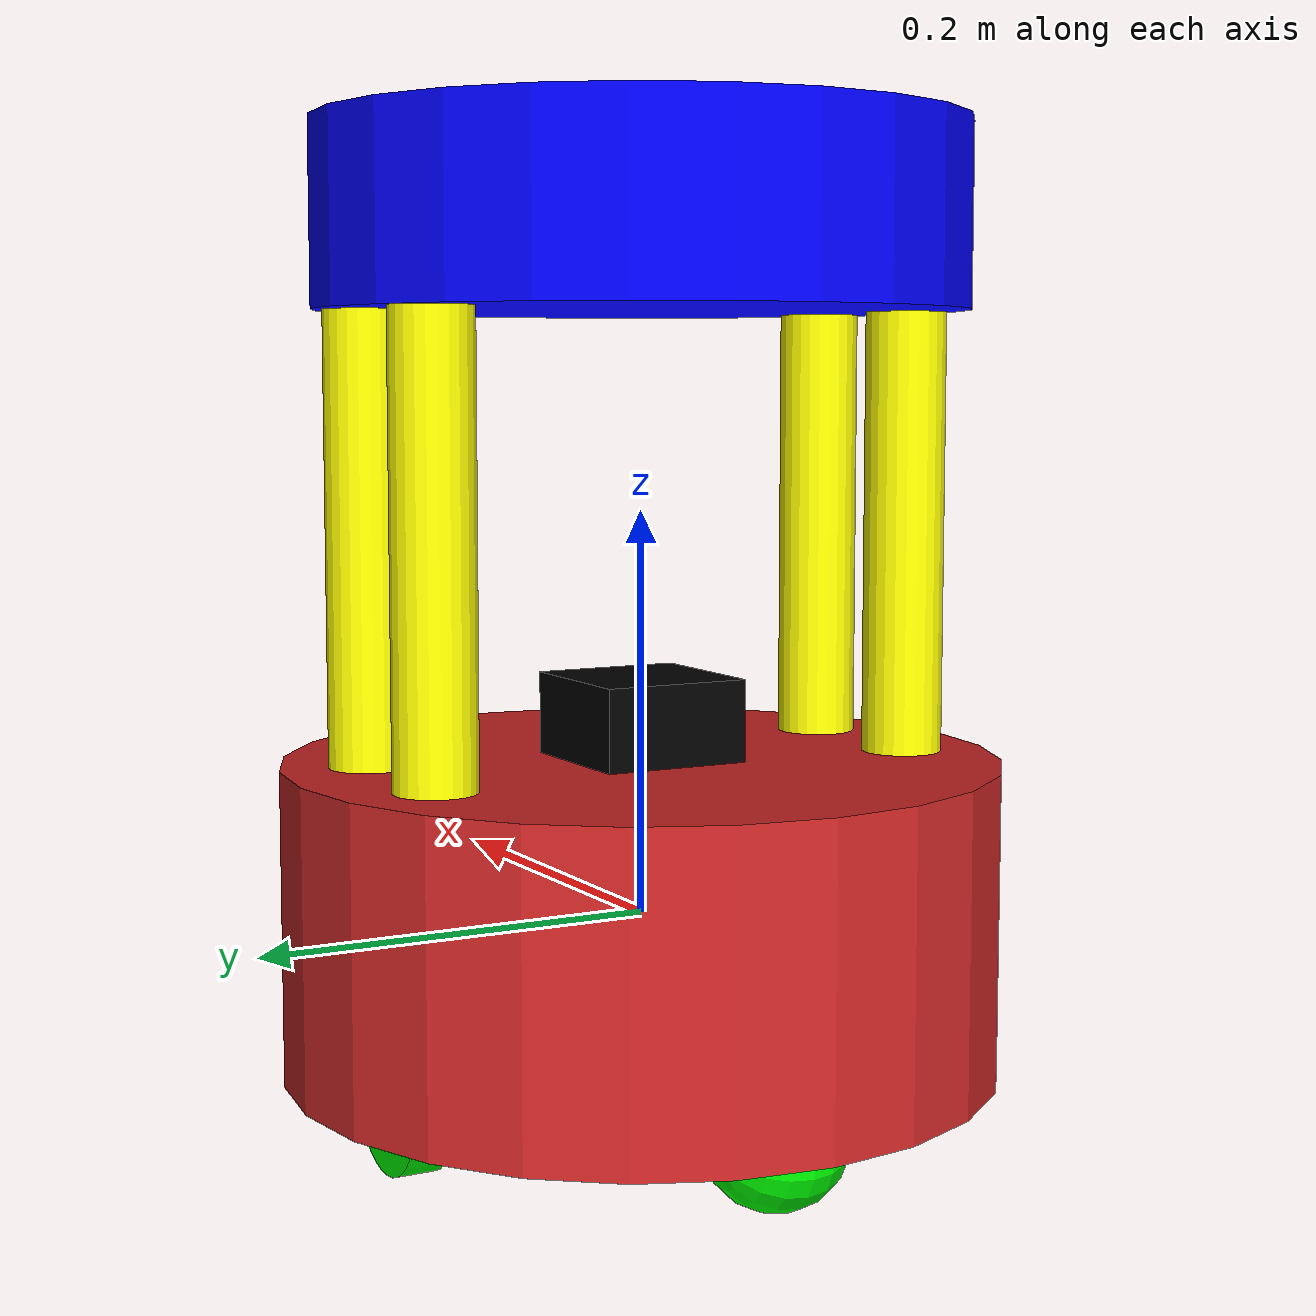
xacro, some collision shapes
<?xml version="1.0"?>
<robot xmlns:xacro="http://www.ros.org/wiki/xacro" name="barista_robot">

<!-- Robot Name -->
<xacro:property name="robot_name" value="$(arg robot_name)"/>

<!-- Main Body Dimensions-->
<xacro:property name="body_length" value="0.155"/>
<xacro:property name="body_radius" value="0.178"/>

<!-- Caster Wheels Dimensions-->
<xacro:property name="caster_length" value="0.001"/>
<xacro:property name="caster_radius" value="0.0045000000000000005"/>
<xacro:property name="caster_sphere" value="0.0352"/>

<!-- Include Laser -->
<xacro:property name="include_laser" value="true"/>

<!-- Include Wheel Macro-->
<xacro:include filename="$(find barista_robot_description)/xacro/wheel.xacro" />

<!-- Include StandOff Macro-->
<xacro:include filename="$(find barista_robot_description)/xacro/standoff.xacro" />

<!-- Include Cup Holder Macro-->
<xacro:include filename="$(find barista_robot_description)/xacro/cup_holder_tray.xacro" />

<!-- Include Rviz Colors Macro-->

<link name="base_link">
  </link>

  <!-- Body -->
  <link name="chassis">
    <visual>
      <geometry>
        <cylinder length="${body_length}" radius="${body_radius}"/>
      </geometry>
      <material name="red"/>
    </visual>

    <collision>
      <geometry>
        <cylinder length="${body_length}" radius="${body_radius}"/>
      </geometry>
    </collision>

    <inertial>
      <mass value="2.92"/>
      <origin rpy="0 0 0" xyz="0 0 0"/>
      <inertia ixx="0.09052" ixy="0" ixz="0" iyy="0.09052" iyz="0" izz="0.03790"/>
    </inertial>

  </link>

  <gazebo reference="chassis">
        <material>Gazebo/Red</material>
  </gazebo>

   <joint name="base_link_joint" type="fixed">
    <origin rpy="0 0 0" xyz="0 0 0" />
    <parent link="base_link" />
    <child link="chassis" />
  </joint>

  <!-- Wheel Left -->
  <xacro:wheel wheel_name="left_wheel" />

  <gazebo reference="left_wheel">
    <kp>1000000000000000000000000000.0</kp>
    <kd>1000000000000000000000000000.0</kd>
    <mu1>10.0</mu1>
    <mu2>10.0</mu2>
    <material>Gazebo/Green</material>
  </gazebo>

  <joint name="joint_left_wheel" type="continuous">
    <origin rpy="0 0 0" xyz="0 0.128 -0.0775"/>
    <child link="left_wheel"/>
    <parent link="chassis"/>
    <axis rpy="0 0 0" xyz="0 1 0"/>
    <limit effort="10000" velocity="1000"/>
    <joint_properties damping="1.0" friction="1.0"/>
  </joint>

  <!-- Wheel Right -->
  <xacro:wheel wheel_name="right_wheel" />

  <gazebo reference="right_wheel">
    <kp>1000000000000000000000000000.0</kp>
    <kd>1000000000000000000000000000.0</kd>
    <mu1>10.0</mu1>
    <mu2>10.0</mu2>
    <material>Gazebo/Green</material>
  </gazebo>

  <joint name="joint_right_wheel" type="continuous">
    <origin rpy="0 0 0" xyz="0 -0.128 -0.0775"/>
    <child link="right_wheel"/>
    <parent link="chassis"/>
    <axis rpy="0 0 0" xyz="0 1 0"/>
    <limit effort="10000" velocity="1000"/>
    <joint_properties damping="1.0" friction="1.0"/>
  </joint>

  <!-- Right Front Standoff -->
  <xacro:standoff standoff_name = "standoff_rod_right_front"/>

  <gazebo reference="standoff_rod_right_front">
        <material>Gazebo/Yellow</material>
  </gazebo>

  <joint name="standoff_off_right_front_joint" type="fixed">
    <origin rpy="0 0 0" xyz="0.040 0.128 0.1875" />
    <parent link="chassis" />
    <child link="standoff_rod_right_front" />
  </joint>

  <!-- Right Rear Standoff -->
  <xacro:standoff standoff_name = "standoff_rod_right_rear"/>

  <gazebo reference="standoff_rod_right_rear">
        <material>Gazebo/Yellow</material>
  </gazebo>

  <joint name="standoff_off_right_rear_joint" type="fixed">
    <origin rpy="0 0 0" xyz="-0.040 0.128 0.1875" />
    <parent link="chassis" />
    <child link="standoff_rod_right_rear" />
  </joint>

  <!-- Left Front Standoff -->
  <xacro:standoff standoff_name = "standoff_rod_left_front"/>

  <gazebo reference="standoff_rod_left_front">
        <material>Gazebo/Yellow</material>
  </gazebo>

  <joint name="standoff_off_left_front_joint" type="fixed">
    <origin rpy="0 0 0" xyz="0.040 -0.128 0.1875" />
    <parent link="chassis" />
    <child link="standoff_rod_left_front" />
  </joint>

  <!-- Left Rear Standoff -->
  <xacro:standoff standoff_name = "standoff_rod_left_rear"/>

  <gazebo reference="standoff_rod_left_rear">
        <material>Gazebo/Yellow</material>
  </gazebo>

  <joint name="standoff_off_left_rear_joint" type="fixed">
    <origin rpy="0 0 0" xyz="-0.040 -0.128 0.1875" />
    <parent link="chassis" />
    <child link="standoff_rod_left_rear" />
  </joint>

  <!-- Cup Holder -->
  <xacro:cup_holder_tray cup_holder_tray_name = "cup_holder_tray" />

  <gazebo reference="cup_holder_tray">
        <material>Gazebo/Blue</material>
  </gazebo>

  <joint name="cup_holder_tray_joint" type="fixed">
    <origin rpy="0 0 0" xyz=" 0 0 0.3425" />
    <parent link="chassis" />
    <child link="cup_holder_tray" />
  </joint>

   <!-- Caster Wheel Front -->
  <link name="front_yaw_link">
    <visual>
    <origin rpy="0 1.5707 1.5707" xyz="0 0 0"/>
        <geometry>
            <cylinder length="${caster_length}" radius="${caster_radius}"/>
        </geometry>
        <material name="blue"/>
    </visual>

    <inertial>
        <mass value="0.12"/>
        <origin rpy="0 0 0" xyz="0 0 0"/>
        <inertia ixx="0.00002727" ixy="0" ixz="0" iyy="0.00002727" iyz="0" izz=" 0.00002936"/>
    </inertial>

    <collision>
        <geometry>
            <cylinder length="${caster_length}" radius="${caster_radius}"/>
        </geometry>
    </collision>
  </link>

  <joint name="front_yaw_joint" type="continuous">
        <origin rpy="0 0 0" xyz="0.128 0 -0.0775" />
        <parent link="chassis" />
        <child link="front_yaw_link" />
        <axis xyz="0 0 1" />
        <limit effort="1000.0" velocity="100.0" />
        <dynamics damping="0.0" friction="0.1"/>
  </joint>

  <gazebo reference="front_yaw_link">
        <material>Gazebo/Blue</material>
  </gazebo>

  <link name="front_roll_link">
    <visual>
        <origin rpy="0 1.5707 1.5707" xyz="0 0 0"/>
        <geometry>
            <cylinder length="${caster_length}" radius="${caster_radius}"/>
        </geometry>
        <material name="red"/>
    </visual>

    <inertial>
        <mass value="0.12"/>
        <origin rpy="0 0 0" xyz="0 0 0"/>
        <inertia ixx="0.00002727" ixy="0" ixz="0" iyy="0.00002727" iyz="0" izz=" 0.00002936"/>
    </inertial>

    <collision>
        <geometry>
            <cylinder length="${caster_length}" radius="${caster_radius}"/>
        </geometry>
    </collision>
  </link>

  <joint name="front_roll_joint" type="continuous">
        <origin rpy="0 0 0" xyz="0 0 0" />
        <parent link="front_yaw_link" />
        <child link="front_roll_link" />
        <axis xyz="1 0 0" />
        <limit effort="1000.0" velocity="100.0" />
        <dynamics damping="0.0" friction="0.1"/>
  </joint>

   <gazebo reference="front_roll_link">
        <material>Gazebo/Red</material>
   </gazebo>

  <link name="front_pitch_link">
    <visual>
        <origin rpy="0 1.5707 1.5707" xyz="0 0 0"/>
        <geometry>
            <sphere radius="${caster_sphere}"/>
        </geometry>
        <material name="green_dark"/>
    </visual>

    <inertial>
        <mass value="0.11"/>
        <origin rpy="0 0 0" xyz="0 0 0"/>
        <inertia ixx="0.00005395" ixy="0" ixz="0" iyy="0.00005395" iyz="0" izz="0.00005395"/>
    </inertial>

    <collision>
        <geometry>
            <sphere radius="0.0352"/>
        </geometry>
        </collision>
  </link>

  <gazebo reference="front_pitch_link">
    <kp>1000000000000000000000000000.0</kp>
    <kd>1000000000000000000000000000.0</kd>
    <mu1>0.5</mu1>
    <mu2>0.5</mu2>
    <material>Gazebo/Purple</material>
  </gazebo>

  <joint name="front_pitch_joint" type="continuous">
        <origin rpy="0 0 0" xyz="0 0 0" />
        <parent link="front_roll_link" />
        <child link="front_pitch_link" />
        <axis xyz="0 1 0" />
        <limit effort="1000.0" velocity="100.0" />
        <dynamics damping="0.0" friction="0.1"/>
  </joint>

<!-- Caster Wheel Back -->
  <link name="back_yaw_link">
    <visual>
        <origin rpy="0 1.5707 1.5707" xyz="0 0 0"/>
        <geometry>
          <cylinder length="${caster_length}" radius="${caster_radius}"/>
        </geometry>
        <material name="blue"/>
      </visual>

    <inertial>
        <mass value="0.12"/>
        <origin rpy="0 0 0" xyz="0 0 0"/>
        <inertia ixx="0.00002727" ixy="0" ixz="0" iyy="0.00002727" iyz="0" izz=" 0.00002936"/>
    </inertial>

    <collision>
        <geometry>
            <cylinder length="${caster_length}" radius="${caster_radius}"/>
        </geometry>
        </collision>
  </link>

  <joint name="back_yaw_joint" type="continuous">
        <origin rpy="0 0 0" xyz="-0.128 0 -0.0775" />
        <parent link="chassis" />
        <child link="back_yaw_link" />
        <axis xyz="0 0 1" />
        <limit effort="1000.0" velocity="100.0" />
        <dynamics damping="0.0" friction="0.1"/>
  </joint>

  <gazebo reference="back_yaw_link">
        <material>Gazebo/Blue</material>
  </gazebo>

  <link name="back_roll_link">
    <visual>
        <origin rpy="0 1.5707 1.5707" xyz="0 0 0"/>
        <geometry>
          <cylinder length="${caster_length}" radius="${caster_radius}"/>
        </geometry>
        <material name="red"/>
    </visual>

    <inertial>
        <mass value="0.12"/>
        <origin rpy="0 0 0" xyz="0 0 0"/>
        <inertia ixx="0.00002727" ixy="0" ixz="0" iyy="0.00002727" iyz="0" izz=" 0.00002936"/>
    </inertial>

    <collision>
        <geometry>
            <cylinder length="${caster_length}" radius="${caster_radius}"/>
        </geometry>
    </collision>

  </link>

  <joint name="back_roll_joint" type="continuous">
        <origin rpy="0 0 0" xyz="0 0 0" />
        <parent link="back_yaw_link" />
        <child link="back_roll_link" />
        <axis xyz="1 0 0" />
        <limit effort="1000.0" velocity="100.0" />
        <dynamics damping="0.0" friction="0.1"/>
  </joint>

   <gazebo reference="back_roll_link">
        <material>Gazebo/Red</material>
   </gazebo>

  <link name="back_pitch_link">
    <visual>
        <origin rpy="0 1.5707 1.5707" xyz="0 0 0"/>
        <geometry>
            <sphere radius="${caster_sphere}"/>
        </geometry>
        <material name="green_light"/>
    </visual>

    <inertial>
        <mass value="0.11"/>
        <origin rpy="0 0 0" xyz="0 0 0"/>
        <inertia ixx="0.00005395" ixy="0" ixz="0" iyy="0.00005395" iyz="0" izz="0.00005395"/>
    </inertial>

    <collision>
        <geometry>
            <sphere radius="0.0352"/>
        </geometry>
    </collision>

  </link>

  <gazebo reference="back_pitch_link">
    <kp>1000000000000000000000000000.0</kp>
    <kd>1000000000000000000000000000.0</kd>
    <mu1>0.5</mu1>
    <mu2>0.5</mu2>
    <material>Gazebo/Yellow</material>
  </gazebo>

  <joint name="back_pitch_joint" type="continuous">
    <origin rpy="0 0 0" xyz="0 0 0" />
    <parent link="back_roll_link" />
    <child link="back_pitch_link" />
    <axis xyz="0 1 0" />
    <limit effort="1000.0" velocity="100.0" />
    <dynamics damping="0.0" friction="0.1"/>
  </joint>

    <!-- Rviz Colors Macro -->
    <material name="green_dark">
        <color rgba="0.0 0.5 0.0 1"/>
    </material>

    <material name="white">
        <color rgba="1.0 1.0 1.0 1"/>
    </material>

    <material name="box_bot_blue">
        <color rgba="0.088656 0.428691 0.491021 1"/>
  </material>

  <!-- PLUGINS -->

  <!-- JOINT PUBLISHER -->
  <gazebo>
    <plugin name="barista_robot_joint_state" filename="libgazebo_ros_joint_state_publisher.so">
      <ros>
          <namespace>/${robot_name}</namespace>
          <remapping>~/out:=joint_states</remapping>
      </ros>
      <update_rate>30</update_rate>

      <joint_name>joint_left_wheel</joint_name>
      <joint_name>joint_right_wheel</joint_name>
      <joint_name>front_yaw_joint</joint_name>
      <joint_name>back_yaw_joint</joint_name>
      <joint_name>front_roll_joint</joint_name>
      <joint_name>back_roll_joint</joint_name>
      <joint_name>front_pitch_joint</joint_name>
      <joint_name>back_pitch_joint</joint_name>
      <joint_name>base_link_joint</joint_name>

    </plugin>
  </gazebo>

   <!-- Differential drive -->
  <gazebo>
    <plugin filename="libgazebo_ros_diff_drive.so" name="differential_drive_controller">
        <ros>
            <namespace>/${robot_name}</namespace>
            <remapping>/cmd_vel:=cmd_vel</remapping>
        </ros>

        <update_rate>100</update_rate>
        <!-- Wheel joints -->
        <left_joint>joint_left_wheel</left_joint>
        <right_joint>joint_right_wheel</right_joint>
        <!-- Kinematics -->
        <wheel_separation>0.3354</wheel_separation>
        <wheel_diameter>0.0704</wheel_diameter>
        <publish_odom>true</publish_odom>
        <!-- TF frames -->
        <odometry_frame>${robot_name}/odom</odometry_frame>>
        <robot_base_frame>${robot_name}/base_link</robot_base_frame>
        <publish_odom_tf>true</publish_odom_tf>
        <publish_wheel_tf>false</publish_wheel_tf>
        <!-- Limits -->
        <max_wheel_torque>3.0</max_wheel_torque>
        <max_wheel_acceleration>2.0</max_wheel_acceleration>

    </plugin>
  </gazebo>

  <!-- Laser Scan -->
  <xacro:arg name="include_laser" default="true"/>
    <xacro:if value="${include_laser}">

        <!-- Include Laser Scan -->
        <xacro:include filename="$(find barista_robot_description)/xacro/laser_scanner.xacro" />

        <xacro:laser_scan laser_scan_name= "laser_scan_link" />

        <gazebo reference="laser_scan_link">
            <material>Gazebo/Black</material>
        </gazebo>

        <joint name="laser_scan_link_joint" type="fixed">
            <origin rpy="0 0 0" xyz="0.0 0.0 0.0780"/>
            <parent link="chassis"/>
            <child link="laser_scan_link"/>
        </joint>

        <link name="laser_scan_frame">
        </link>

        <joint name="laser_scan_frame_joint" type="fixed">
            <origin rpy="0 0 0" xyz="0 0 0.03"/>
            <parent link="laser_scan_link"/>
            <child link="laser_scan_frame"/>
            <axis xyz="0 0 0"/>
        </joint>

        <gazebo reference="laser_scan_frame">
            <sensor name="sensor_ray" type="ray">
                <pose>0 0 0 0 0 0</pose>
                <ray>
                <scan>
                    <horizontal>
                    <samples>200</samples>
                    <resolution>1.0</resolution>
                    <min_angle>-3.14</min_angle>
                    <max_angle>3.14</max_angle>
                    </horizontal>
                </scan>
                <range>
                    <min>0.356</min>
                    <max>5.0</max>
                </range>
                </ray>
                <always_on>true</always_on>
                <visualize>true</visualize>
                <update_rate>100.0</update_rate>
                <plugin name="laser" filename="libgazebo_ros_ray_sensor.so">
                <ros>
                    <namespace>/${robot_name}</namespace>
                    <remapping>~/out:=scan</remapping>
                </ros>
                <output_type>sensor_msgs/LaserScan</output_type>
                </plugin>
            </sensor>
        </gazebo>

  </xacro:if>

</robot>

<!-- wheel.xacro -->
<robot xmlns:xacro="http://www.ros.org/wiki/xacro">

<xacro:property name="wheel_width" value="0.0206"/>
<xacro:property name="wheel_radius" value="0.0352"/>

<material name="green_light">
    <color rgba="0.0 1.0 0.0 1"/>
</material>

<!-- Wheel Macro -->
<xacro:macro name="wheel" params="wheel_name">
  <link name="${wheel_name}">

      <visual>
        <origin rpy="0 1.5707 1.5707" xyz="0 0 0"/>
        <geometry>
          <cylinder length="${wheel_width}" radius="${wheel_radius}"/>
        </geometry>
        <material name="green_light"/>
      </visual>

      <collision>
        <origin rpy="0 1.5707 1.5707" xyz="0 0 0"/>
        <geometry>
          <cylinder length="${wheel_width}" radius="${wheel_radius}"/>
        </geometry>
      </collision>

      <inertial>
        <origin rpy="0 1.5707 1.5707" xyz="0 0 0"/>
        <mass value="0.05"/>
        <inertia ixx="0.00002727" ixy="0" ixz="0" iyy="0.00002727" iyz="0" izz=" 0.00002936"/>
    </inertial>

  </link>

</xacro:macro>

</robot>

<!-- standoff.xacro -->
<robot xmlns:xacro="http://www.ros.org/wiki/xacro">

<xacro:property name="standoff_length" value="0.220"/>
<xacro:property name="standoff_radius" value="0.020"/>

<material name="yellow">
    <color rgba="1.0 1.0 0.0 1"/>
</material>

<!-- Standoff Macro -->
  <xacro:macro name="standoff" params = "standoff_name">
  <link name="${standoff_name}">

    <visual>
      <geometry>
        <cylinder radius="${standoff_radius}" length="${standoff_length}"/>
      </geometry>
      <material name="yellow"/>
    </visual>

    <inertial>
      <mass value="0.41"/>
      <origin rpy="0 0 0" xyz="0 0 0"/>
      <inertia ixx="0.00012973" ixy="0" ixz="0" iyy="0.00012973" iyz="0" izz="0.0000082"/>
    </inertial>

    <collision>
      <geometry>
        <cylinder radius="${standoff_radius}" length="${standoff_length}"/>
      </geometry>
    </collision>

  </link>

  </xacro:macro>

</robot>

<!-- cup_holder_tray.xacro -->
<robot xmlns:xacro="http://www.ros.org/wiki/xacro">

<xacro:property name="cup_holder_length" value="0.090"/>
<xacro:property name="cup_holder_radius" value="0.160"/>

<material name="blue">
    <color rgba="0.0 0.0 1.0 1"/>
</material>

<!-- Cup Holder Tray -->
  <xacro:macro name="cup_holder_tray" params = "cup_holder_tray_name">
  <link name="${cup_holder_tray_name}">

    <visual>
      <geometry>
        <cylinder radius="0.160" length="0.090"/>
      </geometry>
      <material name="blue"/>
    </visual>

    <inertial>
      <mass value="1.31"/>
      <origin rpy="0 0 0" xyz="0 0 0"/>
       <inertia ixx="0.006605" ixy="0" ixz="0" iyy="0.006605" iyz="0" izz="0.03328"/>
    </inertial>

    <collision>
      <geometry>
        <cylinder radius="0.160" length="0.090"/>
      </geometry>
    </collision>

  </link>
  </xacro:macro>

</robot>

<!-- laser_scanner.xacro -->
<robot xmlns:xacro="http://www.ros.org/wiki/xacro">

<material name="black">
    <color rgba="0.0 0.0 0.0 1"/>
</material>

<!-- Laser Position Control-->

<xacro:macro name="laser_scan" params = "laser_scan_name">
    <link name="${laser_scan_name}">
        <visual>
        <origin rpy="0 0 0" xyz="0 0 0"/>
        <geometry>
            <mesh filename="package://barista_robot_description/meshes/hokuyo_urg_04lx.dae" scale="1.0 1.0 1.0"/>
        </geometry>
        <material name="black"/>
        </visual>

        <collision>
        <origin rpy="0 0 0" xyz="0 0 0.0204"/>
        <geometry>
            <box size="0.074986 0.074935 0.0408"/>
        </geometry>
        </collision>

        <inertial>

        <mass value="0.01"/>
        <origin rpy="0 0 0" xyz="0 0 0.0204"/>
        <inertia ixx="6.066578520833334e-06" ixy="0" ixz="0" iyy="6.072950163333333e-06" iyz="0" izz="9.365128684166666e-06"/>
        </inertial>
    </link>

</xacro:macro>

</robot>
